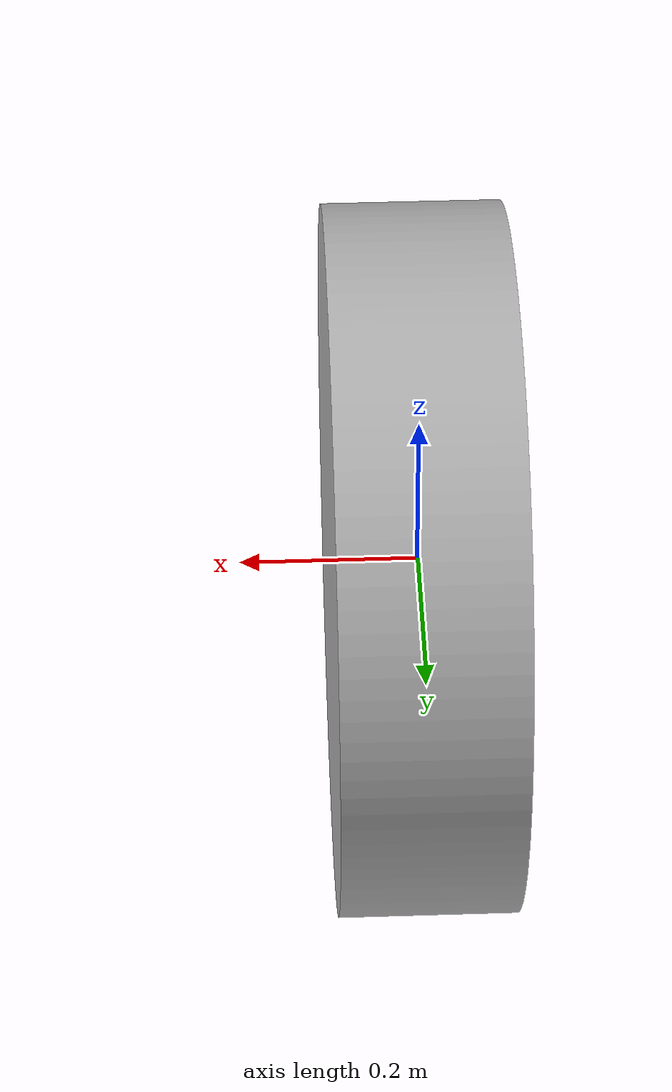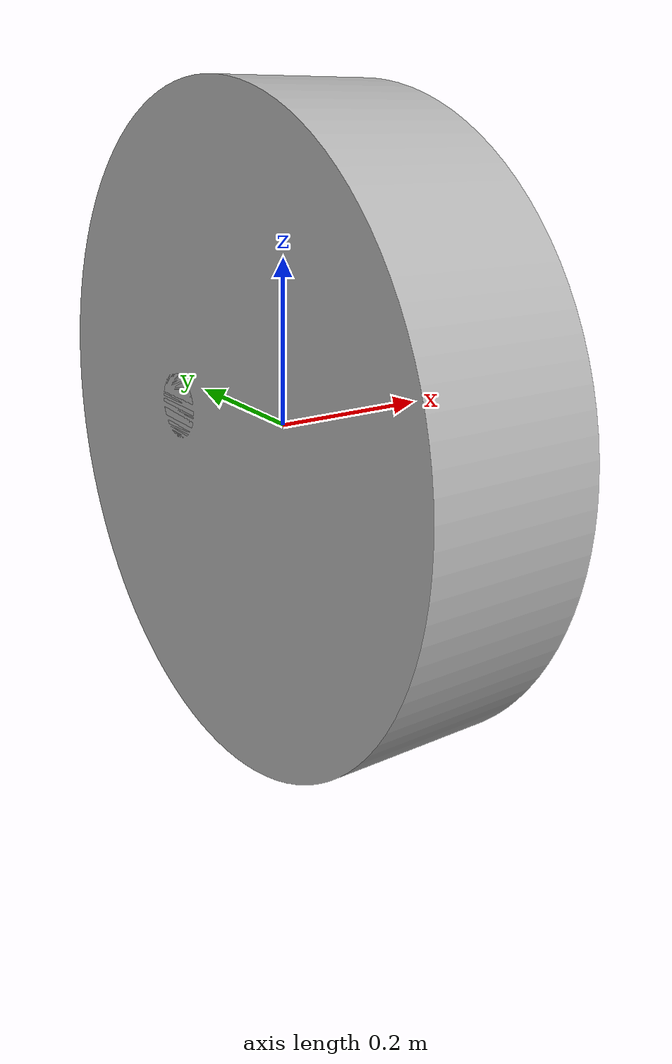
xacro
<?xml version="1.0" ?>
<robot name="robot" xmlns:xacro="http://www.ros.org/wiki/xacro">

<xacro:include filename="$(find robot)/urdf/materials.xacro" />
<xacro:include filename="$(find robot)/urdf/robot.trans" />
<xacro:include filename="$(find robot)/urdf/robot.gazebo" />
<link name="base_link">
  <inertial>
    <origin xyz="-1.514808277263353e-17 5.101665553979481e-05 0.019999664794410715" rpy="0 0 0"/>
    <mass value="1.2728533351045312"/>
    <inertia ixx="0.004415" iyy="0.00256" izz="0.006635" ixy="0.0" iyz="-0.0" ixz="0.0"/>
  </inertial>
  <visual>
    <origin xyz="0 0 0" rpy="0 0 0"/>
    <geometry>
      <mesh filename="package://robot/meshes/base_link.stl" scale="0.001 0.001 0.001"/>
    </geometry>
    <material name="silver"/>
  </visual>
  <collision>
    <origin xyz="0 0 0" rpy="0 0 0"/>
    <geometry>
      <mesh filename="package://robot/meshes/base_link.stl" scale="0.001 0.001 0.001"/>
    </geometry>
  </collision>
</link>

<link name="caster_wheel_1">
  <inertial>
    <origin xyz="-0.005000000000000495 -2.058718588243691e-07 -2.149933009398808e-12" rpy="0 0 0"/>
    <mass value="0.0016434456569091604"/>
    <inertia ixx="0.0" iyy="0.0" izz="0.0" ixy="0.0" iyz="0.0" ixz="0.0"/>
  </inertial>
  <visual>
    <origin xyz="-0.005 0.071557 0.0125" rpy="0 0 0"/>
    <geometry>
      <mesh filename="package://robot/meshes/caster_wheel_1.stl" scale="0.001 0.001 0.001"/>
    </geometry>
    <material name="silver"/>
  </visual>
  <collision>
    <origin xyz="-0.005 0.071557 0.0125" rpy="0 0 0"/>
    <geometry>
      <mesh filename="package://robot/meshes/caster_wheel_1.stl" scale="0.001 0.001 0.001"/>
    </geometry>
  </collision>
</link>

<link name="caster_fork_1">
  <inertial>
    <origin xyz="-4.828898138961918e-16 0.003917233985619384 -0.006001009388864729" rpy="0 0 0"/>
    <mass value="0.001842425119376973"/>
    <inertia ixx="0.0" iyy="0.0" izz="0.0" ixy="-0.0" iyz="0.0" ixz="-0.0"/>
  </inertial>
  <visual>
    <origin xyz="-0.0 0.08 0.001" rpy="0 0 0"/>
    <geometry>
      <mesh filename="package://robot/meshes/caster_fork_1.stl" scale="0.001 0.001 0.001"/>
    </geometry>
    <material name="silver"/>
  </visual>
  <collision>
    <origin xyz="-0.0 0.08 0.001" rpy="0 0 0"/>
    <geometry>
      <mesh filename="package://robot/meshes/caster_fork_1.stl" scale="0.001 0.001 0.001"/>
    </geometry>
  </collision>
</link>

<link name="left_wheel_1">
  <inertial>
    <origin xyz="0.009999999999999995 0.0 0.0" rpy="0 0 0"/>
    <mass value="0.09349379737083224"/>
    <inertia ixx="7.5e-05" iyy="4.1e-05" izz="4.1e-05" ixy="0.0" iyz="0.0" ixz="0.0"/>
  </inertial>
  <visual>
    <origin xyz="-0.08 -0.08 -0.02" rpy="0 0 0"/>
    <geometry>
      <mesh filename="package://robot/meshes/left_wheel_1.stl" scale="0.001 0.001 0.001"/>
    </geometry>
    <material name="silver"/>
  </visual>
  <collision>
    <origin xyz="-0.08 -0.08 -0.02" rpy="0 0 0"/>
    <geometry>
      <mesh filename="package://robot/meshes/left_wheel_1.stl" scale="0.001 0.001 0.001"/>
    </geometry>
  </collision>
</link>

<link name="right_wheel_1">
  <inertial>
    <origin xyz="-0.009999999999999995 0.0 0.0" rpy="0 0 0"/>
    <mass value="0.09349379737083224"/>
    <inertia ixx="7.5e-05" iyy="4.1e-05" izz="4.1e-05" ixy="-0.0" iyz="0.0" ixz="0.0"/>
  </inertial>
  <visual>
    <origin xyz="0.08 -0.08 -0.02" rpy="0 0 0"/>
    <geometry>
      <mesh filename="package://robot/meshes/right_wheel_1.stl" scale="0.001 0.001 0.001"/>
    </geometry>
    <material name="silver"/>
  </visual>
  <collision>
    <origin xyz="0.08 -0.08 -0.02" rpy="0 0 0"/>
    <geometry>
      <mesh filename="package://robot/meshes/right_wheel_1.stl" scale="0.001 0.001 0.001"/>
    </geometry>
  </collision>
</link>

<joint name="Revolute 1" type="continuous">
  <origin xyz="0.005 0.008443 -0.0115" rpy="0 0 0"/>
  <parent link="caster_fork_1"/>
  <child link="caster_wheel_1"/>
  <axis xyz="-1.0 0.0 0.0"/>
</joint>

<joint name="Revolute 2" type="continuous">
  <origin xyz="0.0 -0.08 -0.001" rpy="0 0 0"/>
  <parent link="base_link"/>
  <child link="caster_fork_1"/>
  <axis xyz="0.0 0.0 -1.0"/>
</joint>

<joint name="Revolute 3" type="continuous">
  <origin xyz="0.08 0.08 0.02" rpy="0 0 0"/>
  <parent link="base_link"/>
  <child link="left_wheel_1"/>
  <axis xyz="1.0 0.0 0.0"/>
</joint>

<joint name="Revolute 4" type="continuous">
  <origin xyz="-0.08 0.08 0.02" rpy="0 0 0"/>
  <parent link="base_link"/>
  <child link="right_wheel_1"/>
  <axis xyz="-1.0 0.0 0.0"/>
</joint>

</robot>

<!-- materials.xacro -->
<robot name="balance" xmlns:xacro="http://www.ros.org/wiki/xacro" >

<material name="silver">
  <color rgba="0.700 0.700 0.700 1.000"/>
</material>

</robot>

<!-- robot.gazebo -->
<robot name="robot" xmlns:xacro="http://www.ros.org/wiki/xacro" >

<xacro:property name="body_color" value="Gazebo/Silver" />

<gazebo>
  <plugin name="control" filename="libgazebo_ros_control.so"/>
</gazebo>
<gazebo reference="base_link">
  <material>${body_color}</material>
  <mu1>0.2</mu1>
  <mu2>0.2</mu2>
  <selfCollide>true</selfCollide>
  <gravity>true</gravity>
</gazebo>

<gazebo reference="caster_wheel_1">
  <material>${body_color}</material>
  <mu1>0.2</mu1>
  <mu2>0.2</mu2>
  <selfCollide>true</selfCollide>
</gazebo>

<gazebo reference="caster_fork_1">
  <material>${body_color}</material>
  <mu1>0.2</mu1>
  <mu2>0.2</mu2>
  <selfCollide>true</selfCollide>
</gazebo>

<gazebo reference="left_wheel_1">
  <material>${body_color}</material>
  <mu1>0.2</mu1>
  <mu2>0.2</mu2>
  <selfCollide>true</selfCollide>
</gazebo>

<gazebo reference="right_wheel_1">
  <material>${body_color}</material>
  <mu1>0.2</mu1>
  <mu2>0.2</mu2>
  <selfCollide>true</selfCollide>
</gazebo>

</robot>
